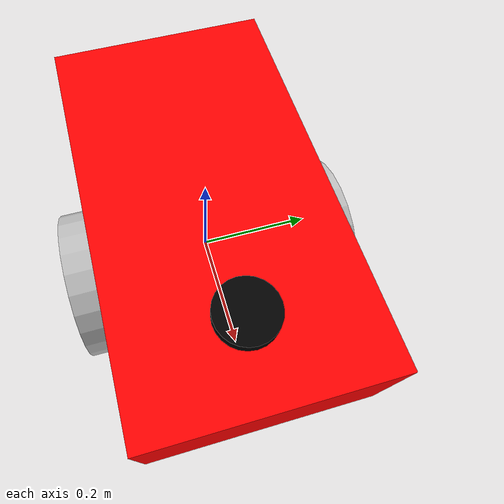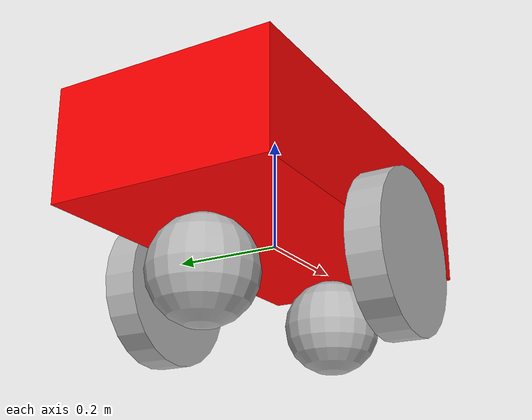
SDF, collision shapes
<?xml version="1.0" ?>
<sdf version="1.5" version2="1.5">
  <model name="vehicle">
  <static name="base_link">
    false
  </static>

  <!-- ****************** ROBOT BASE FOOTPRINT ***************************  -->
  <pose>0.0 0.0 0.0 0.0 0.0 0.0</pose>
  <!-- ********************** ROBOT BASE *********************************  -->
  <link name="base_link">
    <pose relative_to='__model__'>0  0 0  0 0 0</pose>
    <inertial> <!--inertial properties of the link mass, inertia matix-->
        <mass>10.14395</mass>
        <inertia>
            <ixx>0.095329</ixx>
            <ixy>0</ixy>
            <ixz>0</ixz>
            <iyy>0.381317</iyy>
            <iyz>0</iyz>
            <izz>0.476646</izz>
        </inertia>
    </inertial>

    <collision name="base_collision">
      <pose>0 0 0.1 0 0 0</pose>
      <geometry>
        <box>
          <size>0.70 0.39 0.20</size>
        </box>
      </geometry>
    </collision>

    <visual name="base_visual">
      <pose>0 0 -0.05 1.5707963267949 0 3.141592654</pose>
      <geometry>
        <mesh>
          <uri>package://ign_demos/models/two_wheeled_robot_description/meshes/robot_base.stl</uri>
          <scale>1.0 1.0 1.0</scale>
        </mesh>
      </geometry>
      <material>
        <ambient>1.0 0.0 0.0 1.0</ambient>
        <diffuse>1.0 0.0 0.0 1.0</diffuse>
        <specular>0.0 0.0 0.0 1.0</specular>
        <emissive>0.0 0.0 0.0 1.0</emissive>
      </material>
    </visual>

  </link>

  <!-- *********************** IMU SENSOR SETUP **************************  -->
  <link name="imu_link">
    <gravity>true</gravity>

    <sensor name="imu_sensor" type="imu">
      <always_on>1</always_on>
      <update_rate>1</update_rate>
      <visualize>true</visualize>
      <topic>imu</topic>
    </sensor>
  </link>

  <!-- ****************************** LIDAR *****************************    -->
  <link name="lidar_link">
    <inertial>
      <pose>0.215 0 0.13 0 0 0</pose>
      <inertia>
        <ixx>0.001</ixx>
        <ixy>0.000</ixy>
        <ixz>0.000</ixz>
        <iyy>0.001</iyy>
        <iyz>0.000</iyz>
        <izz>0.001</izz>
      </inertia>
      <mass>0.114</mass>
    </inertial>

    <collision name="lidar_collision">
      <pose>0.215 0 0.13 0 0 0</pose>
      <geometry>
        <cylinder>
          <radius>0.0508</radius>
          <length>0.18</length>
        </cylinder>
      </geometry>
    </collision>

    <visual name="lidar_visual">
      <pose>0.215 0 0.13 0 0 0</pose>
      <geometry>
        <cylinder>
          <radius>0.0508</radius>
          <length>0.18</length>
        </cylinder>
      </geometry>
      <material>
        <ambient>0.0 0.0 0.0 1.0</ambient>
        <diffuse>0.0 0.0 0.0 1.0</diffuse>
        <specular>0.0 0.0 0.0 1.0</specular>
        <emissive>0.0 0.0 0.0 1.0</emissive>
      </material>
    </visual>

    <sensor name="lidar" type="gpu_lidar">
      <pose>0 0 -0.25 0 0 0</pose>
      <topic>lidar</topic>
      <always_on>true</always_on>
      <visualize>true</visualize>
      <update_rate>5</update_rate>
      <ray>
        <scan>
          <horizontal>
            <samples>220</samples>
            <resolution>1.000000</resolution>
            <min_angle>-3.14159</min_angle>
            <max_angle>3.14159</max_angle>
          </horizontal>
          <vertical>
            <samples>10</samples>
            <resolution>1</resolution>
            <min_angle>0</min_angle>
            <max_angle>0.314159</max_angle>
          </vertical>
        </scan>
        <range>
          <min>0.3</min>
          <max>15.0</max>
          <resolution>0.015</resolution>
        </range>
        <noise>
          <type>gaussian</type>
          <mean>0.0</mean>
          <stddev>0.01</stddev>
        </noise>
      </ray>

      <plugin
        filename="gz-sim-sensors-system"
        name="gz::sim::systems::Sensors">
        <render_engine>ogre2</render_engine>
      </plugin>
    </sensor>

    <sensor name="rgbd_camera" type="rgbd_camera">
      <pose>0.35 0 -0.1 0 0 0</pose>
      <camera>
        <horizontal_fov>1.047</horizontal_fov>
        <image>
          <width>320</width>
          <height>240</height>
        </image>
        <clip>
          <near>0.1</near>
          <far>100</far>
        </clip>
      </camera>
      <always_on>1</always_on>
      <update_rate>30</update_rate>
      <visualize>true</visualize>
      <topic>custom_params</topic>

    </sensor>
  </link>

  <!-- *********************** DRIVE WHEELS ******************************  -->
  <link name="drivewhl_l_link">
    <pose>0 0.23 -0.05 0 1.570796 1.570796</pose>
    <inertial>
        <mass>1</mass>
        <inertia>
            <ixx>0.043333</ixx>
            <ixy>0</ixy>
            <ixz>0</ixz>
            <iyy>0.043333</iyy>
            <iyz>0</iyz>
            <izz>0.08</izz>
        </inertia>
    </inertial>
    <collision name="drivewhl_l_collision">
      <geometry>
        <cylinder>
          <radius>0.14</radius>
          <length>0.06</length>
        </cylinder>
      </geometry>
    </collision>

    <visual name="drivewhl_l_visual">
      <geometry>
        <cylinder>
          <radius>0.14</radius>
          <length>0.06</length>
        </cylinder>
      </geometry>
    </visual>
  </link>

  <link name="drivewhl_r_link">
    <pose>0 -0.23 -0.05 0 1.570796 1.570796</pose>
    <inertial>
        <mass>1</mass>
        <inertia>
            <ixx>0.043333</ixx>
            <ixy>0</ixy>
            <ixz>0</ixz>
            <iyy>0.043333</iyy>
            <iyz>0</iyz>
            <izz>0.08</izz>
        </inertia>
    </inertial>
    <collision name="drivewhl_r_collision">
      <geometry>
        <cylinder>
          <radius>0.14</radius>
          <length>0.06</length>
        </cylinder>
      </geometry>
    </collision>

    <visual name="drivewhl_r_visual">
      <geometry>
        <cylinder>
          <radius>0.14</radius>
          <length>0.06</length>
        </cylinder>
      </geometry>
    </visual>
  </link>

  <!-- *********************** CASTER WHEEL ******************************  -->
  <link name='front_caster'>
    <pose>0.217 0 -0.1 0 0 0</pose>
    <inertial>
      <inertia>
        <ixx>0.001</ixx>
        <ixy>0.000</ixy>
        <ixz>0.000</ixz>
        <iyy>0.001</iyy>
        <iyz>0.000</iyz>
        <izz>0.001</izz>
      </inertia>
      <mass>70.0</mass>
    </inertial>
    <collision name='collision'>
      <geometry>
        <sphere>
          <radius>0.09</radius>
        </sphere>
      </geometry>
      <surface>
        <friction>
          <ode>
            <mu>0.01</mu>
            <mu2>0.01</mu2>
            <slip1>1.0</slip1>
            <slip2>1.0</slip2>
          </ode>
        </friction>
      </surface>
    </collision>
    <visual name="front_caster_visual">
      <geometry>
        <sphere>
          <radius>0.09</radius>
        </sphere>
      </geometry>
    </visual>
  </link>

  <link name='behind_caster'>
    <pose>-0.217 0 -0.1 0 0 0</pose>
    <inertial>
      <inertia>
        <ixx>0.001</ixx>
        <ixy>0.000</ixy>
        <ixz>0.000</ixz>
        <iyy>0.001</iyy>
        <iyz>0.000</iyz>
        <izz>0.001</izz>
      </inertia>
      <mass>70.0</mass>
    </inertial>
    <collision name='collision'>
      <geometry>
        <sphere>
          <radius>0.09</radius>
        </sphere>
      </geometry>
      <surface>
        <friction>
          <ode>
            <mu>0.01</mu>
            <mu2>0.01</mu2>
            <slip1>1.0</slip1>
            <slip2>1.0</slip2>
          </ode>
        </friction>
      </surface>
    </collision>
    <visual name="behind_caster_visual">
      <geometry>
        <sphere>
          <radius>0.09</radius>
        </sphere>
      </geometry>
    </visual>
  </link>

  <!-- ************************ JOINTS ***********************************  -->
  <!-- Pose of the joint is the same as the child link frame -->
  <!-- Axis is the axis of rotation relative to the child link frame -->

  <joint name="drivewhl_l_joint" type="revolute">
    <parent>base_link</parent>
    <child>drivewhl_l_link</child>
    <pose>0 0 -0.03 0 0 0</pose>
    <axis>
      <xyz>0 0 1</xyz>
    </axis>
  </joint>

  <joint name="drivewhl_r_joint" type="revolute">
    <parent>base_link</parent>
    <child>drivewhl_r_link</child>
    <pose>0 0 0.03 0 0 0</pose>
    <axis>
      <xyz>0 0 1</xyz>
    </axis>
  </joint>

  <joint name='caster_joint' type='fixed'>
    <parent>base_link</parent>
    <child>front_caster</child>
    <pose>0 0 0 0 0 0</pose>
  </joint>

  <joint name='behind_caster_joint' type='fixed'>
    <parent>base_link</parent>
    <child>behind_caster</child>
    <pose>0 0 0 0 0 0</pose>
  </joint>

  <joint name="imu_joint" type="fixed">
    <parent>base_link</parent>
    <child>imu_link</child>
    <pose>0 0 0 0 0 0</pose>
  </joint>

  <joint name="lidar_joint" type="fixed">
    <parent>base_link</parent>
    <child>lidar_link</child>
    <pose>0 0 0 0 0 0</pose>
  </joint>

  <!-- *********************** WHEEL ODOMETRY ***************************    -->
  <!-- Moving Left-->
  <plugin filename="gz-sim-triggered-publisher-system"
          name="gz::sim::systems::TriggeredPublisher">
      <input type="gz.msgs.Int32" topic="/keyboard/keypress">
          <match field="data">16777234</match>
      </input>
      <output type="gz.msgs.Twist" topic="/cmd_vel">
          linear: {x: 0.0}, angular: {z: 3.5}
      </output>
  </plugin>
  <!-- Moving Forward-->
  <plugin filename="gz-sim-triggered-publisher-system"
          name="gz::sim::systems::TriggeredPublisher">
      <input type="gz.msgs.Int32" topic="/keyboard/keypress">
          <match field="data">16777235</match>
      </input>
      <output type="gz.msgs.Twist" topic="/cmd_vel">
          linear: {x: 5.5}, angular: {z: 0.0}
      </output>
  </plugin>
  <!-- Moving Right-->
  <plugin filename="gz-sim-triggered-publisher-system"
          name="gz::sim::systems::TriggeredPublisher">
      <input type="gz.msgs.Int32" topic="/keyboard/keypress">
          <match field="data">16777236</match>
      </input>
      <output type="gz.msgs.Twist" topic="/cmd_vel">
          linear: {x: 0.0}, angular: {z: -3.5}
      </output>
  </plugin>
  <!-- Moving Backward-->
  <plugin filename="gz-sim-triggered-publisher-system"
          name="gz::sim::systems::TriggeredPublisher">
      <input type="gz.msgs.Int32" topic="/keyboard/keypress">
          <match field="data">16777237</match>
      </input>
      <output type="gz.msgs.Twist" topic="/cmd_vel">
          linear: {x: -5.5}, angular: {z: 0.0}
      </output>
  </plugin>
  <!-- Moving Stop  -->
  <plugin filename="gz-sim-triggered-publisher-system"
          name="gz::sim::systems::TriggeredPublisher">
      <input type="gz.msgs.Int32" topic="/keyboard/keypress">
          <match field="data">84</match>
      </input>
      <output type="gz.msgs.Twist" topic="/cmd_vel">
          linear: {x: 0.0}, angular: {z: 0.0}
      </output>
  </plugin>

  <!-- *********************** siasun *********************   -->

<!-- use next command pub volcity to car

  ign topic -t /wheelvolcity -m ignition.msgs.StringMsg -p "data:'{\"cmd\":\"MoveAt\",\"vel\":[{\"joint\":0,\"velocity\":0},{\"joint\":1,\"velocity\":0}]}'" -->

  <plugin filename="PluginDiffDriveGZ" name="Drive::DifferDriveUnit">
    <left_joint>drivewhl_l_joint</left_joint>
    <right_joint>drivewhl_r_joint</right_joint>
    <subTopic>wheelvolcity</subTopic>
    <pubTopic>pose</pubTopic>
    <left_joint_init_V>0</left_joint_init_V>
    <right_joint_init_V>0</right_joint_init_V>
    <server_ip>172.31.0.4</server_ip>
    <server_port>8787</server_port>
  </plugin>

  <plugin filename="PluginImuBroadcastDriveGZ" name="Drive::ImuBroadcastDriveUnit">
    <ServerIp>127.0.0.1</ServerIp>
    <ServerPort>8886</ServerPort>
    <topic>imu</topic>
  </plugin>

  <plugin filename="PluginLidarBroadcastDriveGZ" name="Drive::LidarBroadcastDriveUnit">
    <ServerIp>127.0.0.1</ServerIp>
    <ServerPort>8885</ServerPort>
    <topic>lidar</topic>
    <MutilSend>true</MutilSend>
  </plugin>
   <plugin filename="PluginOdomBroadcastDriveGZ" name="Drive::OdomBroadcastDriveUnit">
    <ServerIp>127.0.0.1</ServerIp>
    <ServerPort>8887</ServerPort>
    <topic>model/vehicle/odometry</topic>
  </plugin>

  <!-- *********************** System diff drive *********************   -->
  <plugin
      filename="gz-sim-diff-drive-system"
      name="gz::sim::systems::DiffDrive">
      <left_joint>drivewhl_l_joint</left_joint>
      <right_joint>drivewhl_r_joint</right_joint>
      <wheel_separation>0.46</wheel_separation>
      <wheel_radius>0.4</wheel_radius>
      <odom_publish_frequency>1</odom_publish_frequency>
      <topic>cmd_vel</topic>
  </plugin>

  <!-- *********************** Imu *********************   -->
  <plugin filename="gz-sim-imu-system"
        name="gz::sim::systems::Imu">
  </plugin>

  </model>
</sdf>
